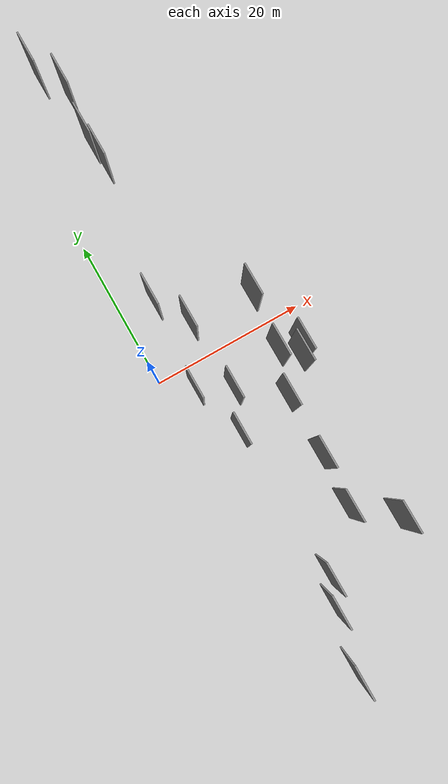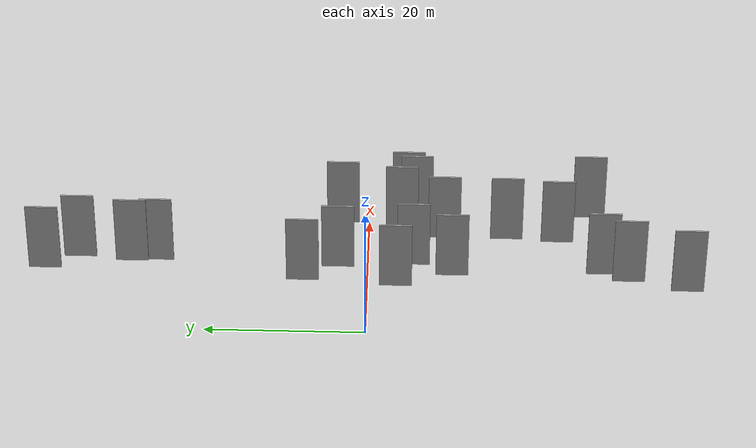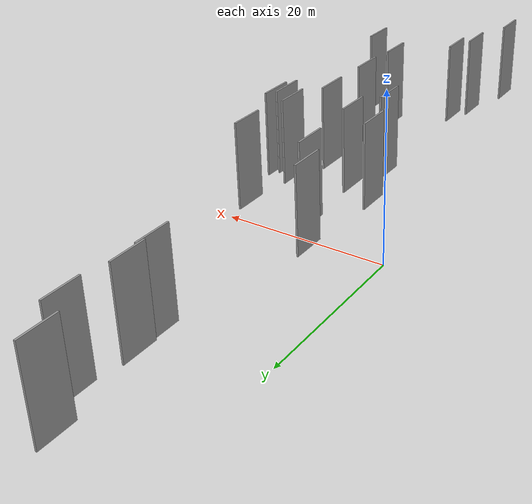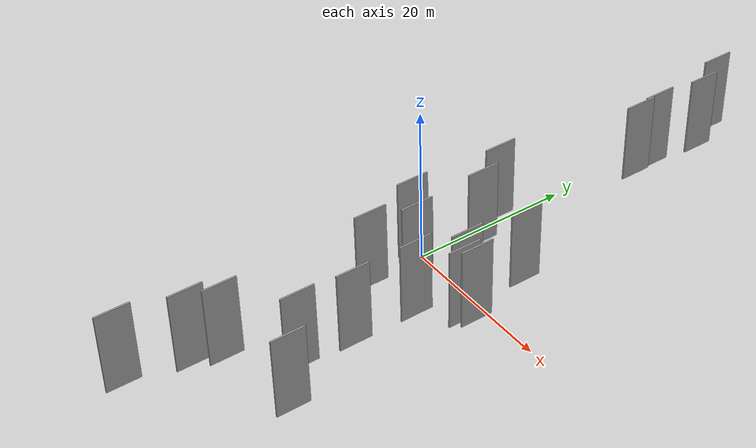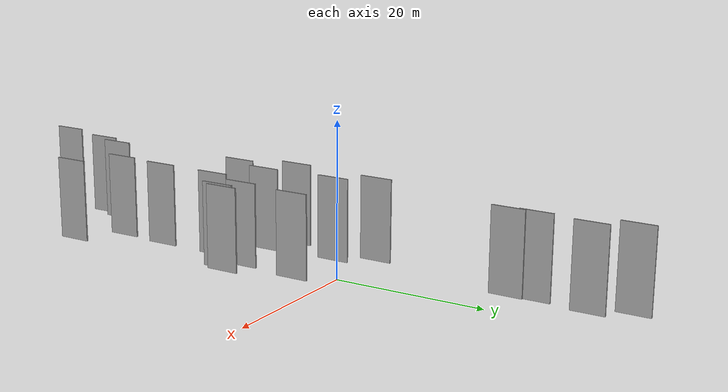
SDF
<sdf version="1.6">
 <world name="default">
  <scene>
   <sky><clouds><speed>12</speed></clouds></sky>
   <ambient>0.4 0.4 0.4 1</ambient>
   <background>0.7 0.7 0.7 1</background>
   <shadows>1</shadows>
  </scene>
  <gravity>0 0 -9.8066</gravity>
  <magnetic_field>6e-06 2.3e-05 -4.2e-05</magnetic_field>
  <physics default="0" name="default_physics" type="ode">
   <ode>
    <solver>
     <type>quick</type>
     <iters>10</iters>
     <sor>1.0</sor>
     <use_dynamic_moi_rescaling>0</use_dynamic_moi_rescaling>
    </solver>
    <constraints>
     <cfm>0</cfm>
     <erp>0.2</erp>
     <contact_max_correcting_vel>100</contact_max_correcting_vel>
     <contact_surface_layer>0.001</contact_surface_layer>
    </constraints>
   </ode>
   <max_step_size>0.004</max_step_size>
   <real_time_factor>1</real_time_factor>
   <real_time_update_rate>250</real_time_update_rate>
  </physics>
  <light name="sun" type="directional">
   <pose>0 0 10 0 0 0</pose>
   <diffuse>0.8 0.8 0.8 1</diffuse>
   <specular>0.2 0.2 0.2 1</specular>
   <attenuation>
    <range>1000</range>
    <constant>0.9</constant>
    <linear>0.01</linear>
    <quadratic>0.001</quadratic>
   </attenuation>
   <direction>-0.5 0.1 -0.9</direction>
  </light>
  <model name="grey_wall_1">
   <static>1</static>
   <pose>5.5036 39.7139 5.0 0.000000 0.000000 1.570796</pose>
   <link name="link">
    <pose>0 0 5.00 0 0 0</pose>
    <collision name="collision"><geometry><box><size>4.00 0.2 10.00</size></box></geometry></collision>
    <visual name="visual">
     <cast_shadows>0</cast_shadows>
     <geometry><box><size>4.00 0.2 10.00</size></box></geometry>
     <material>
      <script>
       <uri>model://grey_wall/materials/scripts</uri>
       <uri>model://grey_wall/materials/textures</uri>
       <name>vrc/grey_wall</name>
      </script>
     </material>
    </visual>
   </link>
  </model>
  <model name="grey_wall_2">
   <static>1</static>
   <pose>16.4278 -27.5203 5.0 0.000000 0.000000 1.570796</pose>
   <link name="link">
    <pose>0 0 5.00 0 0 0</pose>
    <collision name="collision"><geometry><box><size>4.00 0.2 10.00</size></box></geometry></collision>
    <visual name="visual">
     <cast_shadows>0</cast_shadows>
     <geometry><box><size>4.00 0.2 10.00</size></box></geometry>
     <material>
      <script>
       <uri>model://grey_wall/materials/scripts</uri>
       <uri>model://grey_wall/materials/textures</uri>
       <name>vrc/grey_wall</name>
      </script>
     </material>
    </visual>
   </link>
  </model>
  <model name="grey_wall_3">
   <static>1</static>
   <pose>16.0051 -6.0341 5.0 0.000000 0.000000 1.570796</pose>
   <link name="link">
    <pose>0 0 5.00 0 0 0</pose>
    <collision name="collision"><geometry><box><size>4.00 0.2 10.00</size></box></geometry></collision>
    <visual name="visual">
     <cast_shadows>0</cast_shadows>
     <geometry><box><size>4.00 0.2 10.00</size></box></geometry>
     <material>
      <script>
       <uri>model://grey_wall/materials/scripts</uri>
       <uri>model://grey_wall/materials/textures</uri>
       <name>vrc/grey_wall</name>
      </script>
     </material>
    </visual>
   </link>
  </model>
  <model name="grey_wall_4">
   <static>1</static>
   <pose>6.1232 -29.0884 5.0 0.000000 0.000000 1.570796</pose>
   <link name="link">
    <pose>0 0 5.00 0 0 0</pose>
    <collision name="collision"><geometry><box><size>4.00 0.2 10.00</size></box></geometry></collision>
    <visual name="visual">
     <cast_shadows>0</cast_shadows>
     <geometry><box><size>4.00 0.2 10.00</size></box></geometry>
     <material>
      <script>
       <uri>model://grey_wall/materials/scripts</uri>
       <uri>model://grey_wall/materials/textures</uri>
       <name>vrc/grey_wall</name>
      </script>
     </material>
    </visual>
   </link>
  </model>
  <model name="grey_wall_5">
   <static>1</static>
   <pose>6.6425 3.5572 5.0 0.000000 0.000000 1.570796</pose>
   <link name="link">
    <pose>0 0 5.00 0 0 0</pose>
    <collision name="collision"><geometry><box><size>4.00 0.2 10.00</size></box></geometry></collision>
    <visual name="visual">
     <cast_shadows>0</cast_shadows>
     <geometry><box><size>4.00 0.2 10.00</size></box></geometry>
     <material>
      <script>
       <uri>model://grey_wall/materials/scripts</uri>
       <uri>model://grey_wall/materials/textures</uri>
       <name>vrc/grey_wall</name>
      </script>
     </material>
    </visual>
   </link>
  </model>
  <model name="grey_wall_6">
   <static>1</static>
   <pose>4.1509 7.8502 5.0 0.000000 0.000000 1.570796</pose>
   <link name="link">
    <pose>0 0 5.00 0 0 0</pose>
    <collision name="collision"><geometry><box><size>4.00 0.2 10.00</size></box></geometry></collision>
    <visual name="visual">
     <cast_shadows>0</cast_shadows>
     <geometry><box><size>4.00 0.2 10.00</size></box></geometry>
     <material>
      <script>
       <uri>model://grey_wall/materials/scripts</uri>
       <uri>model://grey_wall/materials/textures</uri>
       <name>vrc/grey_wall</name>
      </script>
     </material>
    </visual>
   </link>
  </model>
  <model name="grey_wall_7">
   <static>1</static>
   <pose>3.4086 -3.6073 5.0 0.000000 0.000000 1.570796</pose>
   <link name="link">
    <pose>0 0 5.00 0 0 0</pose>
    <collision name="collision"><geometry><box><size>4.00 0.2 10.00</size></box></geometry></collision>
    <visual name="visual">
     <cast_shadows>0</cast_shadows>
     <geometry><box><size>4.00 0.2 10.00</size></box></geometry>
     <material>
      <script>
       <uri>model://grey_wall/materials/scripts</uri>
       <uri>model://grey_wall/materials/textures</uri>
       <name>vrc/grey_wall</name>
      </script>
     </material>
    </visual>
   </link>
  </model>
  <model name="grey_wall_8">
   <static>1</static>
   <pose>7.6550 35.4938 5.0 0.000000 0.000000 1.570796</pose>
   <link name="link">
    <pose>0 0 5.00 0 0 0</pose>
    <collision name="collision"><geometry><box><size>4.00 0.2 10.00</size></box></geometry></collision>
    <visual name="visual">
     <cast_shadows>0</cast_shadows>
     <geometry><box><size>4.00 0.2 10.00</size></box></geometry>
     <material>
      <script>
       <uri>model://grey_wall/materials/scripts</uri>
       <uri>model://grey_wall/materials/textures</uri>
       <name>vrc/grey_wall</name>
      </script>
     </material>
    </visual>
   </link>
  </model>
  <model name="grey_wall_9">
   <static>1</static>
   <pose>7.2434 -5.7421 5.0 0.000000 0.000000 1.570796</pose>
   <link name="link">
    <pose>0 0 5.00 0 0 0</pose>
    <collision name="collision"><geometry><box><size>4.00 0.2 10.00</size></box></geometry></collision>
    <visual name="visual">
     <cast_shadows>0</cast_shadows>
     <geometry><box><size>4.00 0.2 10.00</size></box></geometry>
     <material>
      <script>
       <uri>model://grey_wall/materials/scripts</uri>
       <uri>model://grey_wall/materials/textures</uri>
       <name>vrc/grey_wall</name>
      </script>
     </material>
    </visual>
   </link>
  </model>
  <model name="grey_wall_10">
   <static>1</static>
   <pose>12.2545 -9.5130 5.0 0.000000 0.000000 1.570796</pose>
   <link name="link">
    <pose>0 0 5.00 0 0 0</pose>
    <collision name="collision"><geometry><box><size>4.00 0.2 10.00</size></box></geometry></collision>
    <visual name="visual">
     <cast_shadows>0</cast_shadows>
     <geometry><box><size>4.00 0.2 10.00</size></box></geometry>
     <material>
      <script>
       <uri>model://grey_wall/materials/scripts</uri>
       <uri>model://grey_wall/materials/textures</uri>
       <name>vrc/grey_wall</name>
      </script>
     </material>
    </visual>
   </link>
  </model>
  <model name="grey_wall_11">
   <static>1</static>
   <pose>4.9064 -32.2699 5.0 0.000000 0.000000 1.570796</pose>
   <link name="link">
    <pose>0 0 5.00 0 0 0</pose>
    <collision name="collision"><geometry><box><size>4.00 0.2 10.00</size></box></geometry></collision>
    <visual name="visual">
     <cast_shadows>0</cast_shadows>
     <geometry><box><size>4.00 0.2 10.00</size></box></geometry>
     <material>
      <script>
       <uri>model://grey_wall/materials/scripts</uri>
       <uri>model://grey_wall/materials/textures</uri>
       <name>vrc/grey_wall</name>
      </script>
     </material>
    </visual>
   </link>
  </model>
  <model name="grey_wall_12">
   <static>1</static>
   <pose>7.2723 25.9107 5.0 0.000000 0.000000 1.570796</pose>
   <link name="link">
    <pose>0 0 5.00 0 0 0</pose>
    <collision name="collision"><geometry><box><size>4.00 0.2 10.00</size></box></geometry></collision>
    <visual name="visual">
     <cast_shadows>0</cast_shadows>
     <geometry><box><size>4.00 0.2 10.00</size></box></geometry>
     <material>
      <script>
       <uri>model://grey_wall/materials/scripts</uri>
       <uri>model://grey_wall/materials/textures</uri>
       <name>vrc/grey_wall</name>
      </script>
     </material>
    </visual>
   </link>
  </model>
  <model name="grey_wall_13">
   <static>1</static>
   <pose>11.7815 -23.5254 5.0 0.000000 0.000000 1.570796</pose>
   <link name="link">
    <pose>0 0 5.00 0 0 0</pose>
    <collision name="collision"><geometry><box><size>4.00 0.2 10.00</size></box></geometry></collision>
    <visual name="visual">
     <cast_shadows>0</cast_shadows>
     <geometry><box><size>4.00 0.2 10.00</size></box></geometry>
     <material>
      <script>
       <uri>model://grey_wall/materials/scripts</uri>
       <uri>model://grey_wall/materials/textures</uri>
       <name>vrc/grey_wall</name>
      </script>
     </material>
    </visual>
   </link>
  </model>
  <model name="grey_wall_14">
   <static>1</static>
   <pose>16.7226 -4.9781 5.0 0.000000 0.000000 1.570796</pose>
   <link name="link">
    <pose>0 0 5.00 0 0 0</pose>
    <collision name="collision"><geometry><box><size>4.00 0.2 10.00</size></box></geometry></collision>
    <visual name="visual">
     <cast_shadows>0</cast_shadows>
     <geometry><box><size>4.00 0.2 10.00</size></box></geometry>
     <material>
      <script>
       <uri>model://grey_wall/materials/scripts</uri>
       <uri>model://grey_wall/materials/textures</uri>
       <name>vrc/grey_wall</name>
      </script>
     </material>
    </visual>
   </link>
  </model>
  <model name="grey_wall_15">
   <static>1</static>
   <pose>14.6927 3.1344 5.0 0.000000 0.000000 1.570796</pose>
   <link name="link">
    <pose>0 0 5.00 0 0 0</pose>
    <collision name="collision"><geometry><box><size>4.00 0.2 10.00</size></box></geometry></collision>
    <visual name="visual">
     <cast_shadows>0</cast_shadows>
     <geometry><box><size>4.00 0.2 10.00</size></box></geometry>
     <material>
      <script>
       <uri>model://grey_wall/materials/scripts</uri>
       <uri>model://grey_wall/materials/textures</uri>
       <name>vrc/grey_wall</name>
      </script>
     </material>
    </visual>
   </link>
  </model>
  <model name="grey_wall_16">
   <static>1</static>
   <pose>3.3518 -39.4541 5.0 0.000000 0.000000 1.570796</pose>
   <link name="link">
    <pose>0 0 5.00 0 0 0</pose>
    <collision name="collision"><geometry><box><size>4.00 0.2 10.00</size></box></geometry></collision>
    <visual name="visual">
     <cast_shadows>0</cast_shadows>
     <geometry><box><size>4.00 0.2 10.00</size></box></geometry>
     <material>
      <script>
       <uri>model://grey_wall/materials/scripts</uri>
       <uri>model://grey_wall/materials/textures</uri>
       <name>vrc/grey_wall</name>
      </script>
     </material>
    </visual>
   </link>
  </model>
  <model name="grey_wall_17">
   <static>1</static>
   <pose>14.0052 -4.2086 5.0 0.000000 0.000000 1.570796</pose>
   <link name="link">
    <pose>0 0 5.00 0 0 0</pose>
    <collision name="collision"><geometry><box><size>4.00 0.2 10.00</size></box></geometry></collision>
    <visual name="visual">
     <cast_shadows>0</cast_shadows>
     <geometry><box><size>4.00 0.2 10.00</size></box></geometry>
     <material>
      <script>
       <uri>model://grey_wall/materials/scripts</uri>
       <uri>model://grey_wall/materials/textures</uri>
       <name>vrc/grey_wall</name>
      </script>
     </material>
    </visual>
   </link>
  </model>
  <model name="grey_wall_18">
   <static>1</static>
   <pose>7.0423 29.0544 5.0 0.000000 0.000000 1.570796</pose>
   <link name="link">
    <pose>0 0 5.00 0 0 0</pose>
    <collision name="collision"><geometry><box><size>4.00 0.2 10.00</size></box></geometry></collision>
    <visual name="visual">
     <cast_shadows>0</cast_shadows>
     <geometry><box><size>4.00 0.2 10.00</size></box></geometry>
     <material>
      <script>
       <uri>model://grey_wall/materials/scripts</uri>
       <uri>model://grey_wall/materials/textures</uri>
       <name>vrc/grey_wall</name>
      </script>
     </material>
    </visual>
   </link>
  </model>
  <model name="grey_wall_19">
   <static>1</static>
   <pose>12.1872 -17.2245 5.0 0.000000 0.000000 1.570796</pose>
   <link name="link">
    <pose>0 0 5.00 0 0 0</pose>
    <collision name="collision"><geometry><box><size>4.00 0.2 10.00</size></box></geometry></collision>
    <visual name="visual">
     <cast_shadows>0</cast_shadows>
     <geometry><box><size>4.00 0.2 10.00</size></box></geometry>
     <material>
      <script>
       <uri>model://grey_wall/materials/scripts</uri>
       <uri>model://grey_wall/materials/textures</uri>
       <name>vrc/grey_wall</name>
      </script>
     </material>
    </visual>
   </link>
  </model>
  <model name="grey_wall_20">
   <static>1</static>
   <pose>5.4469 -10.5104 5.0 0.000000 0.000000 1.570796</pose>
   <link name="link">
    <pose>0 0 5.00 0 0 0</pose>
    <collision name="collision"><geometry><box><size>4.00 0.2 10.00</size></box></geometry></collision>
    <visual name="visual">
     <cast_shadows>0</cast_shadows>
     <geometry><box><size>4.00 0.2 10.00</size></box></geometry>
     <material>
      <script>
       <uri>model://grey_wall/materials/scripts</uri>
       <uri>model://grey_wall/materials/textures</uri>
       <name>vrc/grey_wall</name>
      </script>
     </material>
    </visual>
   </link>
  </model>
 </world>
</sdf>
